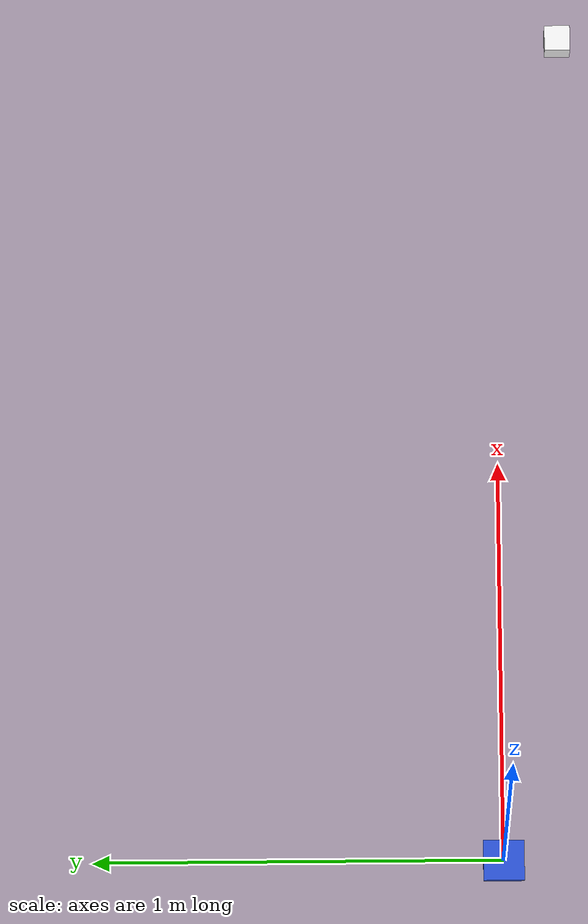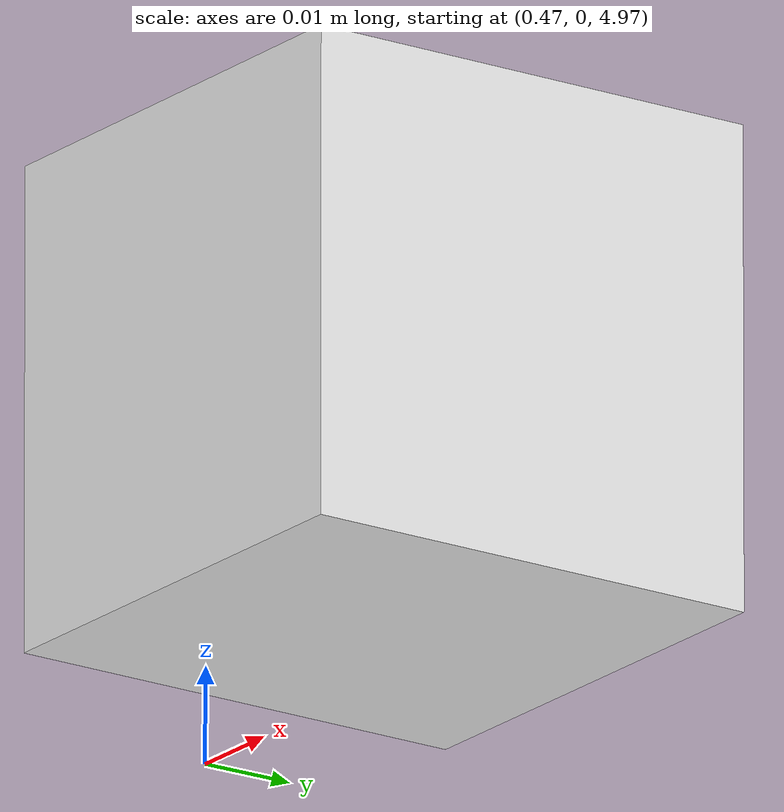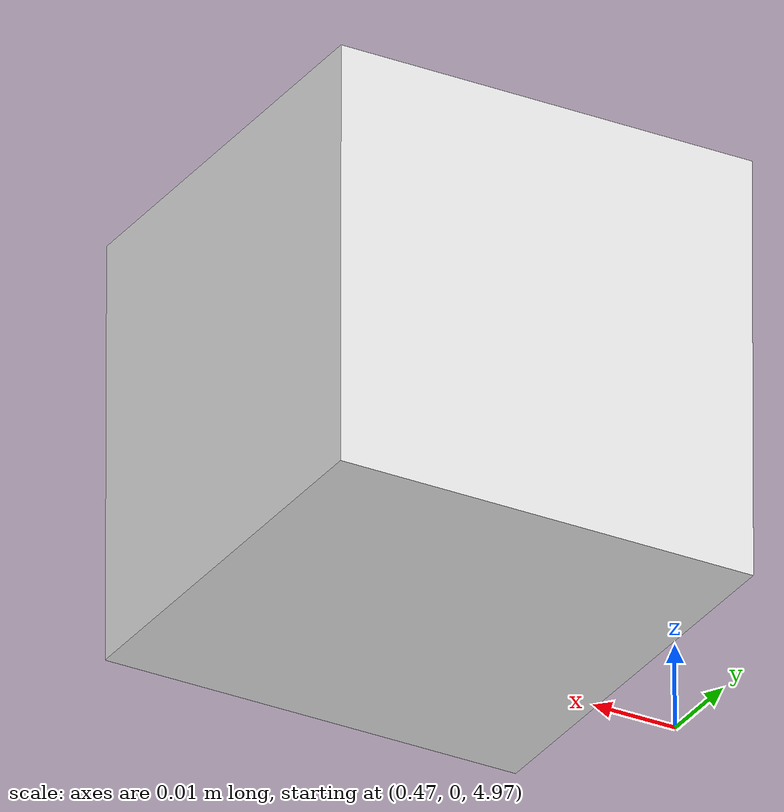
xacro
<?xml version="1.0" ?>

<robot name="m2wr" xmlns:xacro="https://www.ros.org/wiki/xacro" >

<xacro:include filename="$(find m2wr_description)/urdf/gazebo.xacro" />

 <link name="camera_base">

    <!-- pose and inertial -->
    <pose>0.5 0 0.1 0 0 0</pose>

    <inertial>
      <mass value="5"/>
      <origin rpy="0 0 0" xyz="0 0 0.1"/>
      <inertia ixx="0.0395416666667" ixy="0" ixz="0" iyy="0.106208333333" iyz="0" izz="0.106208333333"/>
    </inertial>

    <collision>
      <geometry>
        <box size="0.1 0.1 0.01"/>
      </geometry>
    </collision>

    <visual>
      <origin rpy="0 0 0" xyz="0 0 0"/>
      <geometry>
        <box size="0.1 0.1 0.01"/>
      </geometry>
      <material name="blue"/>
    </visual>
    </link>

  <link name="camera_link">
    <origin xyz="0 0 0.9" rpy="0 0 0"/>
    <collision>
      <origin xyz="0 0 0" rpy="0 0 0"/>
      <geometry>
        <box size="0.05 0.05 0.05W"/>
      </geometry>
    </collision>
    <visual name="camera_visual">
      <origin xyz="0 0 0" rpy="0 0 0"/>
      <geometry>
        <box size="0.05 0.05 0.05"/> <!-- Adjust the size as needed -->
      </geometry>
      <material name="white"> <!-- Adjust the path -->
      </material>
      <plugin name="camera_controller" filename="libgazebo_ros_camera.so">
        <alwaysOn>true</alwaysOn>
        <updateRate>30.0</updateRate>
        <cameraName>overhead_camera</cameraName>
        <imageTopicName>/camera/image</imageTopicName> <!-- ROS topic for camera images -->
        <cameraInfoTopicName>/camera/camera_info</cameraInfoTopicName> <!-- ROS topic for camera info -->
      </plugin>

    </visual>
  </link>

  <!-- Camera Joint -->
  <joint name="camera_joint" type="fixed">
    <parent link="camera_base"/> <!-- Attach to the world or another parent link -->
    <child link="camera_link"/>
    <origin xyz="0.5 0 5.0" rpy="0 1.5708 1.5708"/> <!-- Adjust the position (x, y, z) relative to the parent link -->
  </joint>

</robot>
